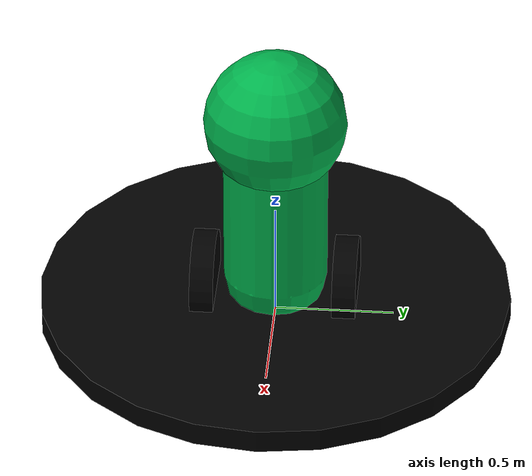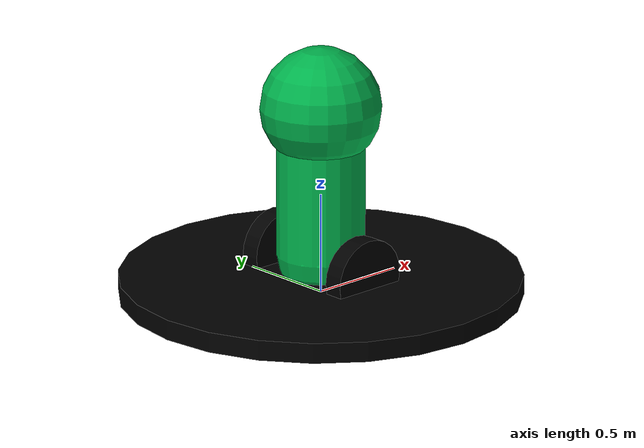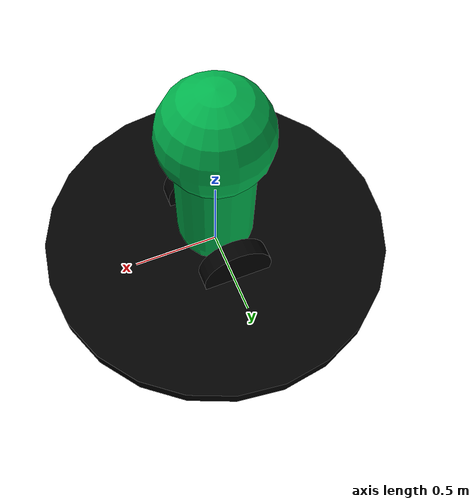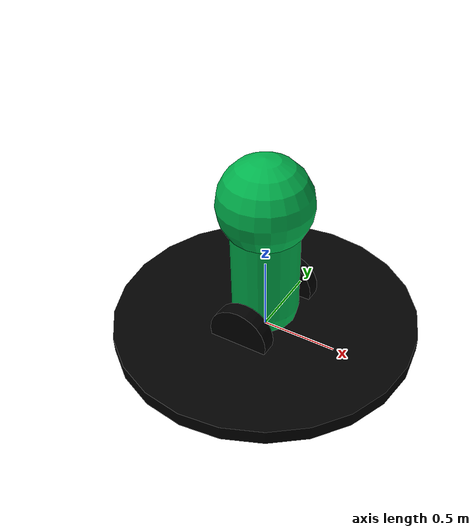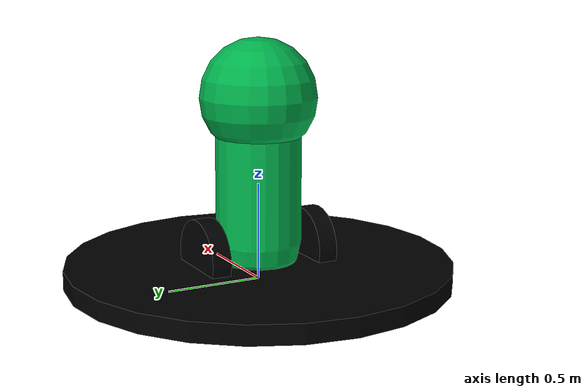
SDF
<?xml version="1.0" encoding="utf-8"?>
<sdf version='1.6'>
<model name='Agent'>
    <scale>100 100 10</scale>
    <link name="torso">
        <sensor name="ISACAntennaSensor" type="custom" ignition:type="ISACAntenna">
            <always_on>1</always_on>
            <update_rate>30</update_rate>
            <visualize>true</visualize>
            <ignition:ISACAntenna>
                <tx_power_dBm>15.0</tx_power_dBm>            <!-- low power for short-range communication -->
                <path_loss_exponent>2.5</path_loss_exponent> <!-- high path loss, mobile devices in cluttered space -->
                <fading_std>2.0</fading_std>                <!-- high fading, mobile users -->
                <bandwidth_Hz>20e6</bandwidth_Hz>            <!-- small channel for sensor data -->
                <noise_figure_dB>5.0</noise_figure_dB>      <!-- small cheap receiver -->
            </ignition:ISACAntenna>
        </sensor>
        <pose>0 0 0.6 0 0 0</pose>
        <rf name="rf">
                <material>wood</material>
                <attenuation_db_per_m>5.0</attenuation_db_per_m>
        </rf>
        <collision name="collision">

            <geometry>
                <capsule>
                    <radius>0.22</radius>
                    <length>0.8</length>
                </capsule>
            </geometry>
        </collision>
        <visual name="visual">
            <geometry>
                <capsule>
                    <radius>0.22</radius>
                    <length>0.8</length>
                </capsule>
            </geometry>
            <material>
                <ambient>0.0 0.7 0.3 1</ambient>
                <diffuse>0.0 0.7 0.3 1</diffuse>
                <specular>0.0 0.7 0.3 1</specular>
            </material>
        </visual>
    </link>
    <!-- Head -->
    <link name="head">
        <!-- Center of head sits on top of torso -->
        <pose>0 0 0.95 0 0 0</pose>
        <collision name="collision">
            <geometry>
                <sphere><radius>0.3</radius></sphere>
            </geometry>
        </collision>
        <visual name="visual">
            <geometry>
                <sphere><radius>0.3</radius></sphere>
            </geometry>
            <material>
                <ambient>0.0 0.7 0.3 1</ambient>
                <diffuse>0.0 0.7 0.3 1</diffuse>
                <specular>0.0 0.7 0.3 1</specular>
            </material>
        </visual>

    </link>
    <joint name="head_fixed" type="fixed">
        <parent>torso</parent>
        <child>head</child>
    </joint>

    <!-- Invisible stabilizing base -->
    <link name="stability_base">
        <pose>0 0 0.05 0 0 0</pose>
        <collision name="collision">
            <geometry>
                <cylinder>
                    <radius>1</radius>
                    <length>0.1</length>
                </cylinder>
            </geometry>
            <surface>
                <contact>
                    <collide_without_contact>true</collide_without_contact>
                    <soft_cfm>0</soft_cfm>
                </contact>
            </surface>
        </collision>
        <visual name="visual">
            <geometry>
                <cylinder>
                    <radius>1</radius>
                    <length>0.1</length>
                </cylinder>
            </geometry>
            <material><ambient>0 0 0 0</ambient></material>
            <visibility_flags>0</visibility_flags>
        </visual>
    </link>
    <!-- Fix torso to base -->
    <joint name="base_joint" type="fixed">
        <parent>torso</parent>
        <child>stability_base</child>
    </joint>

    <link name='left_wheel'>
            <pose relative_to="torso">0 0.3 -0.45 -1.5707 0 0</pose>
            <inertial>
                    <mass>1</mass>
                    <inertia>
                            <ixx>0.013333</ixx>
                            <ixy>0</ixy>
                            <ixz>0</ixz>
                            <iyy>0.013333</iyy>
                            <iyz>0</iyz>
                            <izz>0.02</izz>
                    </inertia>
            </inertial>
            <visual name='visual'>
                    <geometry>
                            <cylinder>
                                    <radius>0.2</radius>
                                    <length>0.1</length>
                            </cylinder>
                    </geometry>
                    <material>
                            <ambient>0.0 0.0 0.0 1</ambient>
                            <diffuse>0.0 0.0 0.0 1</diffuse>
                            <specular>0.0 0.0 0.0 1</specular>
                    </material>
                    <visibility_flags>0</visibility_flags>
            </visual>
            <collision name='collision'>
                    <geometry>
                            <cylinder>
                                    <radius>0.2</radius>
                                    <length>0.1</length>
                            </cylinder>
                    </geometry>
            </collision>
    </link>

    <link name='right_wheel'>
            <pose relative_to="torso">0 -0.3 -0.45 -1.5707 0 0</pose>
            <inertial>
                    <mass>1</mass>
                    <inertia>
                            <ixx>0.013333</ixx>
                            <ixy>0</ixy>
                            <ixz>0</ixz>
                            <iyy>0.013333</iyy>
                            <iyz>0</iyz>
                            <izz>0.02</izz>
                    </inertia>
            </inertial>
            <visual name='visual'>
                    <geometry>
                            <cylinder>
                                    <radius>0.2</radius>
                                    <length>0.1</length>
                            </cylinder>
                    </geometry>
                    <material>
                            <ambient>0.0 0.0 0.0 1</ambient>
                            <diffuse>0.0 0.0 0.0 1</diffuse>
                            <specular>0.0 0.0 0.0 1</specular>
                    </material>
                    <visibility_flags>0</visibility_flags>
            </visual>
            <collision name='collision'>
                    <geometry>
                            <cylinder>
                                    <radius>0.2</radius>
                                    <length>0.1</length>
                            </cylinder>
                    </geometry>
            </collision>
    </link>

    <joint name='left_wheel_joint' type='revolute'>
        <pose relative_to='left_wheel' />
        <parent>torso</parent>
        <child>left_wheel</child>
        <axis>
            <xyz expressed_in='__model__'>0 1 0</xyz>
            <limit>
                <lower>-1.79769e+308</lower>    <!--negative
                infinity-->
                <upper>1.79769e+308</upper>     <!--positive
                infinity-->
            </limit>
        </axis>
    </joint>
    <joint name='right_wheel_joint' type='revolute'>
            <pose relative_to='right_wheel' />
            <parent>torso</parent>
            <child>right_wheel</child>
            <axis>
                    <xyz expressed_in='__model__'>0 1 0</xyz>
                    <limit>
                            <lower>-1.79769e+308</lower>    <!--negative
                            infinity-->
                            <upper>1.79769e+308</upper>     <!--positive
                            infinity-->
                    </limit>
            </axis>
    </joint>
    <plugin
        filename="libignition-gazebo-diff-drive-system.so"
        name="ignition::gazebo::systems::DiffDrive">
        <left_joint>left_wheel_joint</left_joint>
        <right_joint>right_wheel_joint</right_joint>
        <wheel_separation>2</wheel_separation>
        <wheel_radius>0.1</wheel_radius>
        <topic>Agent/cmd_vel</topic>
    </plugin>
    <plugin name='ignition::gazebo::systems::OdometryPublisher'
            filename='ignition-gazebo-odometry-publisher-system'>
            <odom_topic>/Agent/odometry</odom_topic>
            <dimensions>3</dimensions>
    </plugin>
  </model>
</sdf>
